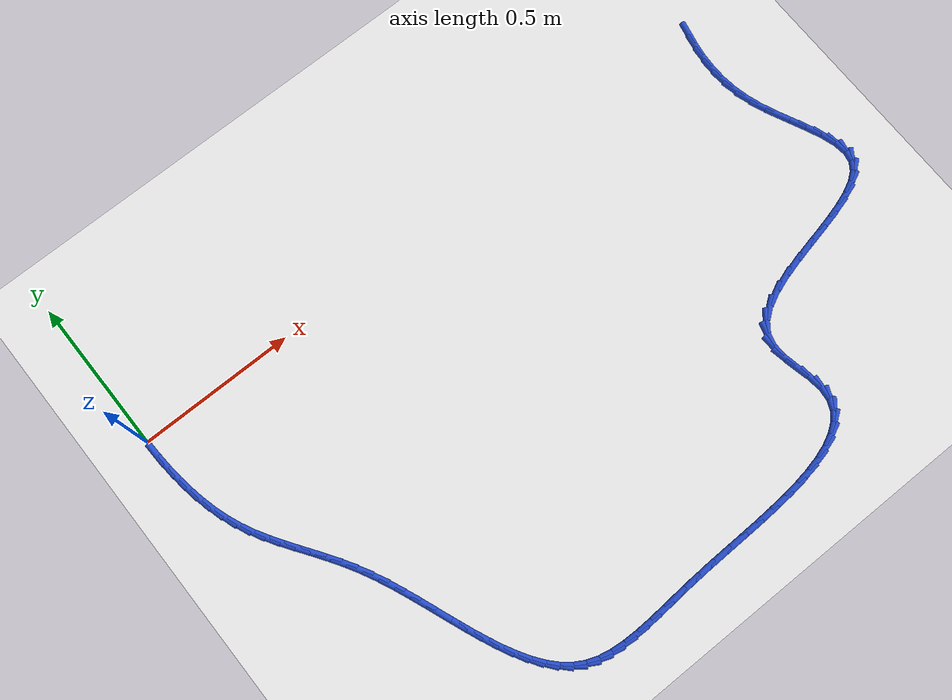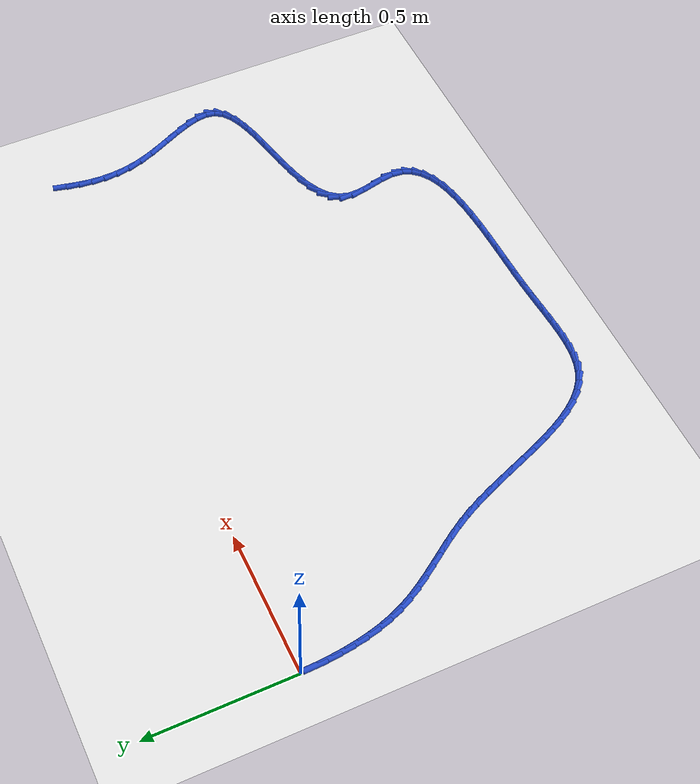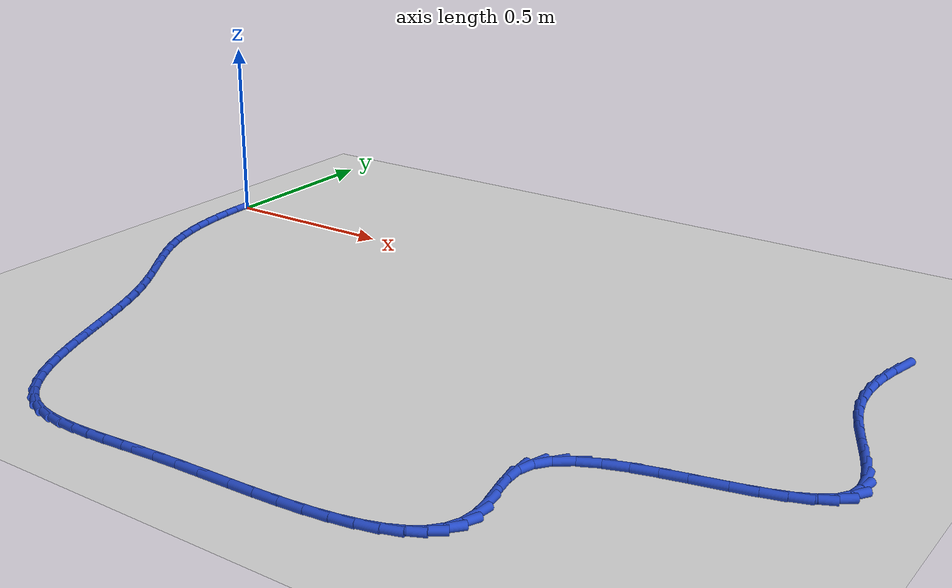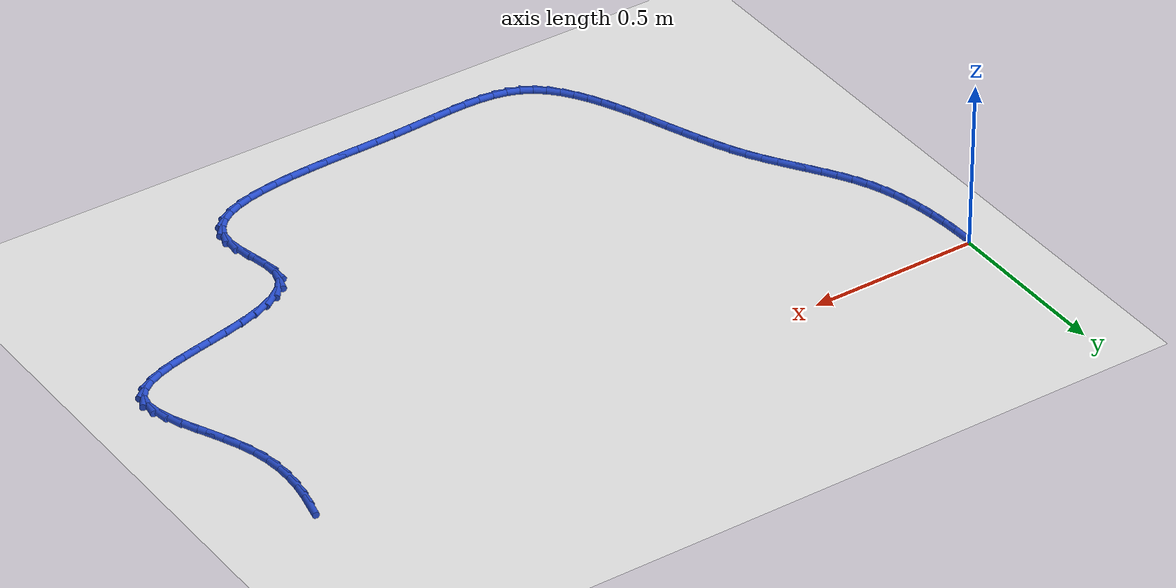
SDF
<sdf version="1.6">
 <world name="default">
  <model name="ground_plane">
   <static>1</static>
   <link name="link">
    <collision name="collision">
     <geometry><plane><normal>0 0 1</normal><size>100 100</size></plane></geometry>
     <surface><friction><ode><mu>100</mu><mu2>50</mu2></ode></friction></surface>
    </collision>
    <visual name="visual">
     <cast_shadows>0</cast_shadows>
     <geometry><plane><normal>0 0 1</normal><size>100 100</size></plane></geometry>
     <material>
      <script><uri>file://media/materials/scripts/gazebo.material</uri><name>Gazebo/WhiteGlow</name></script>
     </material>
    </visual>
   </link>
  </model>
  <model name="line">
   <link name="link_84">
    <pose>2.060452795591752 -0.005595963336700552 0.01 0 1.57 1.3551512401351415</pose>
    <collision name="collision">
     <geometry><cylinder><radius>0.01</radius><length>0.08</length></cylinder></geometry>
    </collision>
    <visual name="visual">
     <material>
      <script><name>Gazebo/Blue</name><uri>file://media/materials/scripts/gazebo.material</uri></script>
     </material>
     <geometry><cylinder><radius>0.01</radius><length>0.08</length></cylinder></geometry>
    </visual>
   </link>
   <link name="link_85">
    <pose>2.0507002668019827 -0.05011765811756408 0.01 0 1.57 1.4232865861265551</pose>
    <collision name="collision">
     <geometry><cylinder><radius>0.01</radius><length>0.08</length></cylinder></geometry>
    </collision>
    <visual name="visual">
     <material>
      <script><name>Gazebo/Blue</name><uri>file://media/materials/scripts/gazebo.material</uri></script>
     </material>
     <geometry><cylinder><radius>0.01</radius><length>0.08</length></cylinder></geometry>
    </visual>
   </link>
   <link name="link_86">
    <pose>2.0440206676386947 -0.09507117305946917 0.01 0 1.57 1.5038928874892956</pose>
    <collision name="collision">
     <geometry><cylinder><radius>0.01</radius><length>0.08</length></cylinder></geometry>
    </collision>
    <visual name="visual">
     <material>
      <script><name>Gazebo/Blue</name><uri>file://media/materials/scripts/gazebo.material</uri></script>
     </material>
     <geometry><cylinder><radius>0.01</radius><length>0.08</length></cylinder></geometry>
    </visual>
   </link>
   <link name="link_87">
    <pose>2.040972780200805 -0.1405596949131822 0.01 0 1.57 -1.546030358591935</pose>
    <collision name="collision">
     <geometry><cylinder><radius>0.01</radius><length>0.08</length></cylinder></geometry>
    </collision>
    <visual name="visual">
     <material>
      <script><name>Gazebo/Blue</name><uri>file://media/materials/scripts/gazebo.material</uri></script>
     </material>
     <geometry><cylinder><radius>0.01</radius><length>0.08</length></cylinder></geometry>
    </visual>
   </link>
   <link name="link_88">
    <pose>2.0421153865872284 -0.18668641042946965 0.01 0 1.57 -1.445740342718742</pose>
    <collision name="collision">
     <geometry><cylinder><radius>0.01</radius><length>0.08</length></cylinder></geometry>
    </collision>
    <visual name="visual">
     <material>
      <script><name>Gazebo/Blue</name><uri>file://media/materials/scripts/gazebo.material</uri></script>
     </material>
     <geometry><cylinder><radius>0.01</radius><length>0.08</length></cylinder></geometry>
    </visual>
   </link>
   <link name="link_89">
    <pose>2.048007268896883 -0.2335545063590989 0.01 0 1.57 -1.3402333599834049</pose>
    <collision name="collision">
     <geometry><cylinder><radius>0.01</radius><length>0.08</length></cylinder></geometry>
    </collision>
    <visual name="visual">
     <material>
      <script><name>Gazebo/Blue</name><uri>file://media/materials/scripts/gazebo.material</uri></script>
     </material>
     <geometry><cylinder><radius>0.01</radius><length>0.08</length></cylinder></geometry>
    </visual>
   </link>
   <link name="link_90">
    <pose>2.059207209228683 -0.2812671694528344 0.01 0 1.57 -1.2361242878296406</pose>
    <collision name="collision">
     <geometry><cylinder><radius>0.01</radius><length>0.08</length></cylinder></geometry>
    </collision>
    <visual name="visual">
     <material>
      <script><name>Gazebo/Blue</name><uri>file://media/materials/scripts/gazebo.material</uri></script>
     </material>
     <geometry><cylinder><radius>0.01</radius><length>0.08</length></cylinder></geometry>
    </visual>
   </link>
   <link name="link_91">
    <pose>2.0761110477318416 -0.3298758560582445 0.01 0 1.57 -1.162174759735885</pose>
    <collision name="collision">
     <geometry><cylinder><radius>0.01</radius><length>0.08</length></cylinder></geometry>
    </collision>
    <visual name="visual">
     <material>
      <script><name>Gazebo/Blue</name><uri>file://media/materials/scripts/gazebo.material</uri></script>
     </material>
     <geometry><cylinder><radius>0.01</radius><length>0.08</length></cylinder></geometry>
    </visual>
   </link>
   <link name="link_92">
    <pose>2.097322132698221 -0.37886294668527154 0.01 0 1.57 -1.127745093713557</pose>
    <collision name="collision">
     <geometry><cylinder><radius>0.01</radius><length>0.08</length></cylinder></geometry>
    </collision>
    <visual name="visual">
     <material>
      <script><name>Gazebo/Blue</name><uri>file://media/materials/scripts/gazebo.material</uri></script>
     </material>
     <geometry><cylinder><radius>0.01</radius><length>0.08</length></cylinder></geometry>
    </visual>
   </link>
   <link name="link_93">
    <pose>2.1203338979892616 -0.4273584489828084 0.01 0 1.57 -1.129024447233397</pose>
    <collision name="collision">
     <geometry><cylinder><radius>0.01</radius><length>0.08</length></cylinder></geometry>
    </collision>
    <visual name="visual">
     <material>
      <script><name>Gazebo/Blue</name><uri>file://media/materials/scripts/gazebo.material</uri></script>
     </material>
     <geometry><cylinder><radius>0.01</radius><length>0.08</length></cylinder></geometry>
    </visual>
   </link>
   <link name="link_94">
    <pose>2.142623261422383 -0.4744871271273454 0.01 0 1.57 -1.1695472942777323</pose>
    <collision name="collision">
     <geometry><cylinder><radius>0.01</radius><length>0.08</length></cylinder></geometry>
    </collision>
    <visual name="visual">
     <material>
      <script><name>Gazebo/Blue</name><uri>file://media/materials/scripts/gazebo.material</uri></script>
     </material>
     <geometry><cylinder><radius>0.01</radius><length>0.08</length></cylinder></geometry>
    </visual>
   </link>
   <link name="link_95">
    <pose>2.161667140815 -0.5193737452953698 0.01 0 1.57 -1.2630680662964158</pose>
    <collision name="collision">
     <geometry><cylinder><radius>0.01</radius><length>0.08</length></cylinder></geometry>
    </collision>
    <visual name="visual">
     <material>
      <script><name>Gazebo/Blue</name><uri>file://media/materials/scripts/gazebo.material</uri></script>
     </material>
     <geometry><cylinder><radius>0.01</radius><length>0.08</length></cylinder></geometry>
    </visual>
   </link>
   <link name="link_96">
    <pose>2.1749424539845306 -0.5611430676633719 0.01 0 1.57 -1.4396297805224285</pose>
    <collision name="collision">
     <geometry><cylinder><radius>0.01</radius><length>0.08</length></cylinder></geometry>
    </collision>
    <visual name="visual">
     <material>
      <script><name>Gazebo/Blue</name><uri>file://media/materials/scripts/gazebo.material</uri></script>
     </material>
     <geometry><cylinder><radius>0.01</radius><length>0.08</length></cylinder></geometry>
    </visual>
   </link>
   <link name="link_97">
    <pose>2.179926118748391 -0.5989198584078407 0.01 0 1.57 1.395429004421171</pose>
    <collision name="collision">
     <geometry><cylinder><radius>0.01</radius><length>0.08</length></cylinder></geometry>
    </collision>
    <visual name="visual">
     <material>
      <script><name>Gazebo/Blue</name><uri>file://media/materials/scripts/gazebo.material</uri></script>
     </material>
     <geometry><cylinder><radius>0.01</radius><length>0.08</length></cylinder></geometry>
    </visual>
   </link>
   <link name="link_98">
    <pose>2.174095052923999 -0.6318288817052654 0.01 0 1.57 0.97766791986823</pose>
    <collision name="collision">
     <geometry><cylinder><radius>0.01</radius><length>0.08</length></cylinder></geometry>
    </collision>
    <visual name="visual">
     <material>
      <script><name>Gazebo/Blue</name><uri>file://media/materials/scripts/gazebo.material</uri></script>
     </material>
     <geometry><cylinder><radius>0.01</radius><length>0.08</length></cylinder></geometry>
    </visual>
   </link>
   <link name="link_99">
    <pose>2.1556006908460525 -0.6592646779352935 0.01 0 1.57 0.645076575240495</pose>
    <collision name="collision">
     <geometry><cylinder><radius>0.01</radius><length>0.08</length></cylinder></geometry>
    </collision>
    <visual name="visual">
     <material>
      <script><name>Gazebo/Blue</name><uri>file://media/materials/scripts/gazebo.material</uri></script>
     </material>
     <geometry><cylinder><radius>0.01</radius><length>0.08</length></cylinder></geometry>
    </visual>
   </link>
   <link name="link_100">
    <pose>2.125613250317199 -0.6818291647934299 0.01 0 1.57 0.44109560747134774</pose>
    <collision name="collision">
     <geometry><cylinder><radius>0.01</radius><length>0.08</length></cylinder></geometry>
    </collision>
    <visual name="visual">
     <material>
      <script><name>Gazebo/Blue</name><uri>file://media/materials/scripts/gazebo.material</uri></script>
     </material>
     <geometry><cylinder><radius>0.01</radius><length>0.08</length></cylinder></geometry>
    </visual>
   </link>
   <link name="link_101">
    <pose>2.0861471316560936 -0.7004618949301544 0.01 0 1.57 0.3216947397125242</pose>
    <collision name="collision">
     <geometry><cylinder><radius>0.01</radius><length>0.08</length></cylinder></geometry>
    </collision>
    <visual name="visual">
     <material>
      <script><name>Gazebo/Blue</name><uri>file://media/materials/scripts/gazebo.material</uri></script>
     </material>
     <geometry><cylinder><radius>0.01</radius><length>0.08</length></cylinder></geometry>
    </visual>
   </link>
   <link name="link_102">
    <pose>2.0392167747730423 -0.7161024368308216 0.01 0 1.57 0.25381508895344573</pose>
    <collision name="collision">
     <geometry><cylinder><radius>0.01</radius><length>0.08</length></cylinder></geometry>
    </collision>
    <visual name="visual">
     <material>
      <script><name>Gazebo/Blue</name><uri>file://media/materials/scripts/gazebo.material</uri></script>
     </material>
     <geometry><cylinder><radius>0.01</radius><length>0.08</length></cylinder></geometry>
    </visual>
   </link>
   <link name="link_103">
    <pose>1.9868366195783518 -0.7296903589807862 0.01 0 1.57 0.2198880306778302</pose>
    <collision name="collision">
     <geometry><cylinder><radius>0.01</radius><length>0.08</length></cylinder></geometry>
    </collision>
    <visual name="visual">
     <material>
      <script><name>Gazebo/Blue</name><uri>file://media/materials/scripts/gazebo.material</uri></script>
     </material>
     <geometry><cylinder><radius>0.01</radius><length>0.08</length></cylinder></geometry>
    </visual>
   </link>
   <link name="link_104">
    <pose>1.9310211059823272 -0.7421652298654037 0.01 0 1.57 0.21170193318725733</pose>
    <collision name="collision">
     <geometry><cylinder><radius>0.01</radius><length>0.08</length></cylinder></geometry>
    </collision>
    <visual name="visual">
     <material>
      <script><name>Gazebo/Blue</name><uri>file://media/materials/scripts/gazebo.material</uri></script>
     </material>
     <geometry><cylinder><radius>0.01</radius><length>0.08</length></cylinder></geometry>
    </visual>
   </link>
   <link name="link_105">
    <pose>1.8737846738952773 -0.7544666179700281 0.01 0 1.57 0.2267323509987197</pose>
    <collision name="collision">
     <geometry><cylinder><radius>0.01</radius><length>0.08</length></cylinder></geometry>
    </collision>
    <visual name="visual">
     <material>
      <script><name>Gazebo/Blue</name><uri>file://media/materials/scripts/gazebo.material</uri></script>
     </material>
     <geometry><cylinder><radius>0.01</radius><length>0.08</length></cylinder></geometry>
    </visual>
   </link>
   <link name="link_106">
    <pose>1.817141763227508 -0.7675340917800151 0.01 0 1.57 0.2668776285264531</pose>
    <collision name="collision">
     <geometry><cylinder><radius>0.01</radius><length>0.08</length></cylinder></geometry>
    </collision>
    <visual name="visual">
     <material>
      <script><name>Gazebo/Blue</name><uri>file://media/materials/scripts/gazebo.material</uri></script>
     </material>
     <geometry><cylinder><radius>0.01</radius><length>0.08</length></cylinder></geometry>
    </visual>
   </link>
   <link name="link_107">
    <pose>1.7631068138893244 -0.7823072197807188 0.01 0 1.57 0.3389079473740387</pose>
    <collision name="collision">
     <geometry><cylinder><radius>0.01</radius><length>0.08</length></cylinder></geometry>
    </collision>
    <visual name="visual">
     <material>
      <script><name>Gazebo/Blue</name><uri>file://media/materials/scripts/gazebo.material</uri></script>
     </material>
     <geometry><cylinder><radius>0.01</radius><length>0.08</length></cylinder></geometry>
    </visual>
   </link>
   <link name="link_108">
    <pose>1.713694265791034 -0.7997255704574946 0.01 0 1.57 0.45642680184014245</pose>
    <collision name="collision">
     <geometry><cylinder><radius>0.01</radius><length>0.08</length></cylinder></geometry>
    </collision>
    <visual name="visual">
     <material>
      <script><name>Gazebo/Blue</name><uri>file://media/materials/scripts/gazebo.material</uri></script>
     </material>
     <geometry><cylinder><radius>0.01</radius><length>0.08</length></cylinder></geometry>
    </visual>
   </link>
   <link name="link_109">
    <pose>1.6709185588429432 -0.8207287122956972 0.01 0 1.57 0.6422655572077517</pose>
    <collision name="collision">
     <geometry><cylinder><radius>0.01</radius><length>0.08</length></cylinder></geometry>
    </collision>
    <visual name="visual">
     <material>
      <script><name>Gazebo/Blue</name><uri>file://media/materials/scripts/gazebo.material</uri></script>
     </material>
     <geometry><cylinder><radius>0.01</radius><length>0.08</length></cylinder></geometry>
    </visual>
   </link>
   <link name="link_110">
    <pose>1.6367941329553577 -0.8462562137806824 0.01 0 1.57 0.9228673232064514</pose>
    <collision name="collision">
     <geometry><cylinder><radius>0.01</radius><length>0.08</length></cylinder></geometry>
    </collision>
    <visual name="visual">
     <material>
      <script><name>Gazebo/Blue</name><uri>file://media/materials/scripts/gazebo.material</uri></script>
     </material>
     <geometry><cylinder><radius>0.01</radius><length>0.08</length></cylinder></geometry>
    </visual>
   </link>
   <link name="link_111">
    <pose>1.6133354280385852 -0.8772476433978034 0.01 0 1.57 1.2900836275622056</pose>
    <collision name="collision">
     <geometry><cylinder><radius>0.01</radius><length>0.08</length></cylinder></geometry>
    </collision>
    <visual name="visual">
     <material>
      <script><name>Gazebo/Blue</name><uri>file://media/materials/scripts/gazebo.material</uri></script>
     </material>
     <geometry><cylinder><radius>0.01</radius><length>0.08</length></cylinder></geometry>
    </visual>
   </link>
   <link name="link_112">
    <pose>1.602553940630419 -0.914641021460806 0.01 0 1.57 -1.5262820441991398</pose>
    <collision name="collision">
     <geometry><cylinder><radius>0.01</radius><length>0.08</length></cylinder></geometry>
    </collision>
    <visual name="visual">
     <material>
      <script><name>Gazebo/Blue</name><uri>file://media/materials/scripts/gazebo.material</uri></script>
     </material>
     <geometry><cylinder><radius>0.01</radius><length>0.08</length></cylinder></geometry>
    </visual>
   </link>
   <link name="link_113">
    <pose>1.6045005948281443 -0.9583431353767322 0.01 0 1.57 -1.3743917330117579</pose>
    <collision name="collision">
     <geometry><cylinder><radius>0.01</radius><length>0.08</length></cylinder></geometry>
    </collision>
    <visual name="visual">
     <material>
      <script><name>Gazebo/Blue</name><uri>file://media/materials/scripts/gazebo.material</uri></script>
     </material>
     <geometry><cylinder><radius>0.01</radius><length>0.08</length></cylinder></geometry>
    </visual>
   </link>
   <link name="link_114">
    <pose>1.6138723691208838 -1.0054446741633174 0.01 0 1.57 -1.3497367332188388</pose>
    <collision name="collision">
     <geometry><cylinder><radius>0.01</radius><length>0.08</length></cylinder></geometry>
    </collision>
    <visual name="visual">
     <material>
      <script><name>Gazebo/Blue</name><uri>file://media/materials/scripts/gazebo.material</uri></script>
     </material>
     <geometry><cylinder><radius>0.01</radius><length>0.08</length></cylinder></geometry>
    </visual>
   </link>
   <link name="link_115">
    <pose>1.624460709721561 -1.052560029884406 0.01 0 1.57 -1.443536659515879</pose>
    <collision name="collision">
     <geometry><cylinder><radius>0.01</radius><length>0.08</length></cylinder></geometry>
    </collision>
    <visual name="visual">
     <material>
      <script><name>Gazebo/Blue</name><uri>file://media/materials/scripts/gazebo.material</uri></script>
     </material>
     <geometry><cylinder><radius>0.01</radius><length>0.08</length></cylinder></geometry>
    </visual>
   </link>
   <link name="link_116">
    <pose>1.6300578004978927 -1.0963040001329503 0.01 0 1.57 1.4630678251634142</pose>
    <collision name="collision">
     <geometry><cylinder><radius>0.01</radius><length>0.08</length></cylinder></geometry>
    </collision>
    <visual name="visual">
     <material>
      <script><name>Gazebo/Blue</name><uri>file://media/materials/scripts/gazebo.material</uri></script>
     </material>
     <geometry><cylinder><radius>0.01</radius><length>0.08</length></cylinder></geometry>
    </visual>
   </link>
   <link name="link_117">
    <pose>1.6259678240111788 -1.1341226107270226 0.01 0 1.57 1.1631432102149255</pose>
    <collision name="collision">
     <geometry><cylinder><radius>0.01</radius><length>0.08</length></cylinder></geometry>
    </collision>
    <visual name="visual">
     <material>
      <script><name>Gazebo/Blue</name><uri>file://media/materials/scripts/gazebo.material</uri></script>
     </material>
     <geometry><cylinder><radius>0.01</radius><length>0.08</length></cylinder></geometry>
    </visual>
   </link>
   <link name="link_118">
    <pose>1.6121845035127043 -1.1660399840140747 0.01 0 1.57 0.865893846145309</pose>
    <collision name="collision">
     <geometry><cylinder><radius>0.01</radius><length>0.08</length></cylinder></geometry>
    </collision>
    <visual name="visual">
     <material>
      <script><name>Gazebo/Blue</name><uri>file://media/materials/scripts/gazebo.material</uri></script>
     </material>
     <geometry><cylinder><radius>0.01</radius><length>0.08</length></cylinder></geometry>
    </visual>
   </link>
   <link name="link_119">
    <pose>1.5896080252557299 -1.1925785745395068 0.01 0 1.57 0.6184732455180386</pose>
    <collision name="collision">
     <geometry><cylinder><radius>0.01</radius><length>0.08</length></cylinder></geometry>
    </collision>
    <visual name="visual">
     <material>
      <script><name>Gazebo/Blue</name><uri>file://media/materials/scripts/gazebo.material</uri></script>
     </material>
     <geometry><cylinder><radius>0.01</radius><length>0.08</length></cylinder></geometry>
    </visual>
   </link>
   <link name="link_120">
    <pose>1.5591385754935152 -1.214260836848717 0.01 0 1.57 0.43368614232045055</pose>
    <collision name="collision">
     <geometry><cylinder><radius>0.01</radius><length>0.08</length></cylinder></geometry>
    </collision>
    <visual name="visual">
     <material>
      <script><name>Gazebo/Blue</name><uri>file://media/materials/scripts/gazebo.material</uri></script>
     </material>
     <geometry><cylinder><radius>0.01</radius><length>0.08</length></cylinder></geometry>
    </visual>
   </link>
   <link name="link_121">
    <pose>1.5216763404793205 -1.2316092254871056 0.01 0 1.57 0.30133802636970064</pose>
    <collision name="collision">
     <geometry><cylinder><radius>0.01</radius><length>0.08</length></cylinder></geometry>
    </collision>
    <visual name="visual">
     <material>
      <script><name>Gazebo/Blue</name><uri>file://media/materials/scripts/gazebo.material</uri></script>
     </material>
     <geometry><cylinder><radius>0.01</radius><length>0.08</length></cylinder></geometry>
    </visual>
   </link>
   <link name="link_122">
    <pose>1.4781215064664064 -1.2451461950000706 0.01 0 1.57 0.20720993999344645</pose>
    <collision name="collision">
     <geometry><cylinder><radius>0.01</radius><length>0.08</length></cylinder></geometry>
    </collision>
    <visual name="visual">
     <material>
      <script><name>Gazebo/Blue</name><uri>file://media/materials/scripts/gazebo.material</uri></script>
     </material>
     <geometry><cylinder><radius>0.01</radius><length>0.08</length></cylinder></geometry>
    </visual>
   </link>
   <link name="link_123">
    <pose>1.4293742597080328 -1.2553941999330118 0.01 0 1.57 0.14013073255590272</pose>
    <collision name="collision">
     <geometry><cylinder><radius>0.01</radius><length>0.08</length></cylinder></geometry>
    </collision>
    <visual name="visual">
     <material>
      <script><name>Gazebo/Blue</name><uri>file://media/materials/scripts/gazebo.material</uri></script>
     </material>
     <geometry><cylinder><radius>0.01</radius><length>0.08</length></cylinder></geometry>
    </visual>
   </link>
   <link name="link_124">
    <pose>1.3763347864574602 -1.2628756948313289 0.01 0 1.57 0.09254542811900324</pose>
    <collision name="collision">
     <geometry><cylinder><radius>0.01</radius><length>0.08</length></cylinder></geometry>
    </collision>
    <visual name="visual">
     <material>
      <script><name>Gazebo/Blue</name><uri>file://media/materials/scripts/gazebo.material</uri></script>
     </material>
     <geometry><cylinder><radius>0.01</radius><length>0.08</length></cylinder></geometry>
    </visual>
   </link>
   <link name="link_125">
    <pose>1.3199032729679485 -1.2681131342404206 0.01 0 1.57 0.05959732214188934</pose>
    <collision name="collision">
     <geometry><cylinder><radius>0.01</radius><length>0.08</length></cylinder></geometry>
    </collision>
    <visual name="visual">
     <material>
      <script><name>Gazebo/Blue</name><uri>file://media/materials/scripts/gazebo.material</uri></script>
     </material>
     <geometry><cylinder><radius>0.01</radius><length>0.08</length></cylinder></geometry>
    </visual>
   </link>
   <link name="link_126">
    <pose>1.2609799054927568 -1.2716289727056862 0.01 0 1.57 0.03826423112674772</pose>
    <collision name="collision">
     <geometry><cylinder><radius>0.01</radius><length>0.08</length></cylinder></geometry>
    </collision>
    <visual name="visual">
     <material>
      <script><name>Gazebo/Blue</name><uri>file://media/materials/scripts/gazebo.material</uri></script>
     </material>
     <geometry><cylinder><radius>0.01</radius><length>0.08</length></cylinder></geometry>
    </visual>
   </link>
   <link name="link_127">
    <pose>1.2004648702851475 -1.2739456647725247 0.01 0 1.57 0.026788126391036483</pose>
    <collision name="collision">
     <geometry><cylinder><radius>0.01</radius><length>0.08</length></cylinder></geometry>
    </collision>
    <visual name="visual">
     <material>
      <script><name>Gazebo/Blue</name><uri>file://media/materials/scripts/gazebo.material</uri></script>
     </material>
     <geometry><cylinder><radius>0.01</radius><length>0.08</length></cylinder></geometry>
    </visual>
   </link>
   <link name="link_128">
    <pose>1.13925835359838 -1.2755856649863357 0.01 0 1.57 0.0243528272961943</pose>
    <collision name="collision">
     <geometry><cylinder><radius>0.01</radius><length>0.08</length></cylinder></geometry>
    </collision>
    <visual name="visual">
     <material>
      <script><name>Gazebo/Blue</name><uri>file://media/materials/scripts/gazebo.material</uri></script>
     </material>
     <geometry><cylinder><radius>0.01</radius><length>0.08</length></cylinder></geometry>
    </visual>
   </link>
   <link name="link_129">
    <pose>1.0782605416857134 -1.2770714278925182 0.01 0 1.57 0.030947096932216683</pose>
    <collision name="collision">
     <geometry><cylinder><radius>0.01</radius><length>0.08</length></cylinder></geometry>
    </collision>
    <visual name="visual">
     <material>
      <script><name>Gazebo/Blue</name><uri>file://media/materials/scripts/gazebo.material</uri></script>
     </material>
     <geometry><cylinder><radius>0.01</radius><length>0.08</length></cylinder></geometry>
    </visual>
   </link>
   <link name="link_130">
    <pose>1.0183716208004092 -1.2789254080364714 0.01 0 1.57 0.04707712241939561</pose>
    <collision name="collision">
     <geometry><cylinder><radius>0.01</radius><length>0.08</length></cylinder></geometry>
    </collision>
    <visual name="visual">
     <material>
      <script><name>Gazebo/Blue</name><uri>file://media/materials/scripts/gazebo.material</uri></script>
     </material>
     <geometry><cylinder><radius>0.01</radius><length>0.08</length></cylinder></geometry>
    </visual>
   </link>
   <link name="link_131">
    <pose>0.9604809072165906 -1.281652751374408 0.01 0 1.57 0.06373323482806974</pose>
    <collision name="collision">
     <geometry><cylinder><radius>0.01</radius><length>0.08</length></cylinder></geometry>
    </collision>
    <visual name="visual">
     <material>
      <script><name>Gazebo/Blue</name><uri>file://media/materials/scripts/gazebo.material</uri></script>
     </material>
     <geometry><cylinder><radius>0.01</radius><length>0.08</length></cylinder></geometry>
    </visual>
   </link>
   <link name="link_132">
    <pose>0.9051181076253246 -1.2851859868902773 0.01 0 1.57 0.0677985713273823</pose>
    <collision name="collision">
     <geometry><cylinder><radius>0.01</radius><length>0.08</length></cylinder></geometry>
    </collision>
    <visual name="visual">
     <material>
      <script><name>Gazebo/Blue</name><uri>file://media/materials/scripts/gazebo.material</uri></script>
     </material>
     <geometry><cylinder><radius>0.01</radius><length>0.08</length></cylinder></geometry>
    </visual>
   </link>
   <link name="link_133">
    <pose>0.8523792564322873 -1.288767094364921 0.01 0 1.57 0.056485373210907186</pose>
    <collision name="collision">
     <geometry><cylinder><radius>0.01</radius><length>0.08</length></cylinder></geometry>
    </collision>
    <visual name="visual">
     <material>
      <script><name>Gazebo/Blue</name><uri>file://media/materials/scripts/gazebo.material</uri></script>
     </material>
     <geometry><cylinder><radius>0.01</radius><length>0.08</length></cylinder></geometry>
    </visual>
   </link>
   <link name="link_134">
    <pose>0.8023345424887203 -1.2915968989386362 0.01 0 1.57 0.027051697081657756</pose>
    <collision name="collision">
     <geometry><cylinder><radius>0.01</radius><length>0.08</length></cylinder></geometry>
    </collision>
    <visual name="visual">
     <material>
      <script><name>Gazebo/Blue</name><uri>file://media/materials/scripts/gazebo.material</uri></script>
     </material>
     <geometry><cylinder><radius>0.01</radius><length>0.08</length></cylinder></geometry>
    </visual>
   </link>
   <link name="link_135">
    <pose>0.7550541546458656 -1.2928762257517197 0.01 0 1.57 -0.024076903163464603</pose>
    <collision name="collision">
     <geometry><cylinder><radius>0.01</radius><length>0.08</length></cylinder></geometry>
    </collision>
    <visual name="visual">
     <material>
      <script><name>Gazebo/Blue</name><uri>file://media/materials/scripts/gazebo.material</uri></script>
     </material>
     <geometry><cylinder><radius>0.01</radius><length>0.08</length></cylinder></geometry>
    </visual>
   </link>
   <link name="link_136">
    <pose>0.7106082817549642 -1.2918058999444684 0.01 0 1.57 -0.10121849867977364</pose>
    <collision name="collision">
     <geometry><cylinder><radius>0.01</radius><length>0.08</length></cylinder></geometry>
    </collision>
    <visual name="visual">
     <material>
      <script><name>Gazebo/Blue</name><uri>file://media/materials/scripts/gazebo.material</uri></script>
     </material>
     <geometry><cylinder><radius>0.01</radius><length>0.08</length></cylinder></geometry>
    </visual>
   </link>
   <link name="link_137">
    <pose>0.6690671126672597 -1.2875867466571798 0.01 0 1.57 -0.20868621543428773</pose>
    <collision name="collision">
     <geometry><cylinder><radius>0.01</radius><length>0.08</length></cylinder></geometry>
    </collision>
    <visual name="visual">
     <material>
      <script><name>Gazebo/Blue</name><uri>file://media/materials/scripts/gazebo.material</uri></script>
     </material>
     <geometry><cylinder><radius>0.01</radius><length>0.08</length></cylinder></geometry>
    </visual>
   </link>
   <link name="link_138">
    <pose>0.6305008362339932 -1.2794195910301511 0.01 0 1.57 -0.34870970339636065</pose>
    <collision name="collision">
     <geometry><cylinder><radius>0.01</radius><length>0.08</length></cylinder></geometry>
    </collision>
    <visual name="visual">
     <material>
      <script><name>Gazebo/Blue</name><uri>file://media/materials/scripts/gazebo.material</uri></script>
     </material>
     <geometry><cylinder><radius>0.01</radius><length>0.08</length></cylinder></geometry>
    </visual>
   </link>
   <link name="link_139">
    <pose>0.5949796413064067 -1.2665052582036789 0.01 0 1.57 -0.5160611859689367</pose>
    <collision name="collision">
     <geometry><cylinder><radius>0.01</radius><length>0.08</length></cylinder></geometry>
    </collision>
    <visual name="visual">
     <material>
      <script><name>Gazebo/Blue</name><uri>file://media/materials/scripts/gazebo.material</uri></script>
     </material>
     <geometry><cylinder><radius>0.01</radius><length>0.08</length></cylinder></geometry>
    </visual>
   </link>
   <link name="link_140">
    <pose>0.5625542709580471 -1.248108934845644 0.01 0 1.57 -0.6794800424443905</pose>
    <collision name="collision">
     <geometry><cylinder><radius>0.01</radius><length>0.08</length></cylinder></geometry>
    </collision>
    <visual name="visual">
     <material>
      <script><name>Gazebo/Blue</name><uri>file://media/materials/scripts/gazebo.material</uri></script>
     </material>
     <geometry><cylinder><radius>0.01</radius><length>0.08</length></cylinder></geometry>
    </visual>
   </link>
   <link name="link_141">
    <pose>0.5330419196636493 -1.224268805486015 0.01 0 1.57 -0.8176936304282945</pose>
    <collision name="collision">
     <geometry><cylinder><radius>0.01</radius><length>0.08</length></cylinder></geometry>
    </collision>
    <visual name="visual">
     <material>
      <script><name>Gazebo/Blue</name><uri>file://media/materials/scripts/gazebo.material</uri></script>
     </material>
     <geometry><cylinder><radius>0.01</radius><length>0.08</length></cylinder></geometry>
    </visual>
   </link>
   <link name="link_142">
    <pose>0.5061054701503325 -1.1955337948245046 0.01 0 1.57 -0.9293014872104791</pose>
    <collision name="collision">
     <geometry><cylinder><radius>0.01</radius><length>0.08</length></cylinder></geometry>
    </collision>
    <visual name="visual">
     <material>
      <script><name>Gazebo/Blue</name><uri>file://media/materials/scripts/gazebo.material</uri></script>
     </material>
     <geometry><cylinder><radius>0.01</radius><length>0.08</length></cylinder></geometry>
    </visual>
   </link>
   <link name="link_143">
    <pose>0.4814050649156921 -1.16246189715737 0.01 0 1.57 -1.0166492377955474</pose>
    <collision name="collision">
     <geometry><cylinder><radius>0.01</radius><length>0.08</length></cylinder></geometry>
    </collision>
    <visual name="visual">
     <material>
      <script><name>Gazebo/Blue</name><uri>file://media/materials/scripts/gazebo.material</uri></script>
     </material>
     <geometry><cylinder><radius>0.01</radius><length>0.08</length></cylinder></geometry>
    </visual>
   </link>
   <link name="link_144">
    <pose>0.45860084645732296 -1.1256111067808676 0.01 0 1.57 -1.0832450035891248</pose>
    <collision name="collision">
     <geometry><cylinder><radius>0.01</radius><length>0.08</length></cylinder></geometry>
    </collision>
    <visual name="visual">
     <material>
      <script><name>Gazebo/Blue</name><uri>file://media/materials/scripts/gazebo.material</uri></script>
     </material>
     <geometry><cylinder><radius>0.01</radius><length>0.08</length></cylinder></geometry>
    </visual>
   </link>
   <link name="link_145">
    <pose>0.43735295727281936 -1.0855394179912525 0.01 0 1.57 -1.1324678823783867</pose>
    <collision name="collision">
     <geometry><cylinder><radius>0.01</radius><length>0.08</length></cylinder></geometry>
    </collision>
    <visual name="visual">
     <material>
      <script><name>Gazebo/Blue</name><uri>file://media/materials/scripts/gazebo.material</uri></script>
     </material>
     <geometry><cylinder><radius>0.01</radius><length>0.08</length></cylinder></geometry>
    </visual>
   </link>
   <link name="link_146">
    <pose>0.41732153985977666 -1.0428048250847817 0.01 0 1.57 -1.167075663704375</pose>
    <collision name="collision">
     <geometry><cylinder><radius>0.01</radius><length>0.08</length></cylinder></geometry>
    </collision>
    <visual name="visual">
     <material>
      <script><name>Gazebo/Blue</name><uri>file://media/materials/scripts/gazebo.material</uri></script>
     </material>
     <geometry><cylinder><radius>0.01</radius><length>0.08</length></cylinder></geometry>
    </visual>
   </link>
   <link name="link_147">
    <pose>0.39816673671578884 -0.9979653223577096 0.01 0 1.57 -1.1891107789795978</pose>
    <collision name="collision">
     <geometry><cylinder><radius>0.01</radius><length>0.08</length></cylinder></geometry>
    </collision>
    <visual name="visual">
     <material>
      <script><name>Gazebo/Blue</name><uri>file://media/materials/scripts/gazebo.material</uri></script>
     </material>
     <geometry><cylinder><radius>0.01</radius><length>0.08</length></cylinder></geometry>
    </visual>
   </link>
   <link name="link_148">
    <pose>0.3795486903384517 -0.9515789041062944 0.01 0 1.57 -1.1999526371711404</pose>
    <collision name="collision">
     <geometry><cylinder><radius>0.01</radius><length>0.08</length></cylinder></geometry>
    </collision>
    <visual name="visual">
     <material>
      <script><name>Gazebo/Blue</name><uri>file://media/materials/scripts/gazebo.material</uri></script>
     </material>
     <geometry><cylinder><radius>0.01</radius><length>0.08</length></cylinder></geometry>
    </visual>
   </link>
   <link name="link_149">
    <pose>0.3611275432253597 -0.9042035646267915 0.01 0 1.57 -1.2003997250554628</pose>
    <collision name="collision">
     <geometry><cylinder><radius>0.01</radius><length>0.08</length></cylinder></geometry>
    </collision>
    <visual name="visual">
     <material>
      <script><name>Gazebo/Blue</name><uri>file://media/materials/scripts/gazebo.material</uri></script>
     </material>
     <geometry><cylinder><radius>0.01</radius><length>0.08</length></cylinder></geometry>
    </visual>
   </link>
   <link name="link_150">
    <pose>0.34256343787410776 -0.8563972982154572 0.01 0 1.57 -1.1907376790733057</pose>
    <collision name="collision">
     <geometry><cylinder><radius>0.01</radius><length>0.08</length></cylinder></geometry>
    </collision>
    <visual name="visual">
     <material>
      <script><name>Gazebo/Blue</name><uri>file://media/materials/scripts/gazebo.material</uri></script>
     </material>
     <geometry><cylinder><radius>0.01</radius><length>0.08</length></cylinder></geometry>
    </visual>
   </link>
   <link name="link_151">
    <pose>0.32351651678229054 -0.808718099168547 0.01 0 1.57 -1.1707820343616613</pose>
    <collision name="collision">
     <geometry><cylinder><radius>0.01</radius><length>0.08</length></cylinder></geometry>
    </collision>
    <visual name="visual">
     <material>
      <script><name>Gazebo/Blue</name><uri>file://media/materials/scripts/gazebo.material</uri></script>
     </material>
     <geometry><cylinder><radius>0.01</radius><length>0.08</length></cylinder></geometry>
    </visual>
   </link>
   <link name="link_152">
    <pose>0.30364692244750296 -0.7617239617823172 0.01 0 1.57 -1.1398988521079194</pose>
    <collision name="collision">
     <geometry><cylinder><radius>0.01</radius><length>0.08</length></cylinder></geometry>
    </collision>
    <visual name="visual">
     <material>
      <script><name>Gazebo/Blue</name><uri>file://media/materials/scripts/gazebo.material</uri></script>
     </material>
     <geometry><cylinder><radius>0.01</radius><length>0.08</length></cylinder></geometry>
    </visual>
   </link>
   <link name="link_153">
    <pose>0.28261479736733947 -0.7159728803530234 0.01 0 1.57 -1.0970166749669972</pose>
    <collision name="collision">
     <geometry><cylinder><radius>0.01</radius><length>0.08</length></cylinder></geometry>
    </collision>
    <visual name="visual">
     <material>
      <script><name>Gazebo/Blue</name><uri>file://media/materials/scripts/gazebo.material</uri></script>
     </material>
     <geometry><cylinder><radius>0.01</radius><length>0.08</length></cylinder></geometry>
    </visual>
   </link>
   <link name="link_154">
    <pose>0.2600802934176841 -0.6720228387117912 0.01 0 1.57 -1.0459009855094243</pose>
    <collision name="collision">
     <geometry><cylinder><radius>0.01</radius><length>0.08</length></cylinder></geometry>
    </collision>
    <visual name="visual">
     <material>
      <script><name>Gazebo/Blue</name><uri>file://media/materials/scripts/gazebo.material</uri></script>
     </material>
     <geometry><cylinder><radius>0.01</radius><length>0.08</length></cylinder></geometry>
    </visual>
   </link>
   <link name="link_155">
    <pose>0.23588105779602744 -0.6302337555609066 0.01 0 1.57 -1.0048311380057138</pose>
    <collision name="collision">
     <geometry><cylinder><radius>0.01</radius><length>0.08</length></cylinder></geometry>
    </collision>
    <visual name="visual">
     <material>
      <script><name>Gazebo/Blue</name><uri>file://media/materials/scripts/gazebo.material</uri></script>
     </material>
     <geometry><cylinder><radius>0.01</radius><length>0.08</length></cylinder></geometry>
    </visual>
   </link>
   <link name="link_156">
    <pose>0.21048647974727777 -0.5902605954163648 0.01 0 1.57 -0.9790897367561125</pose>
    <collision name="collision">
     <geometry><cylinder><radius>0.01</radius><length>0.08</length></cylinder></geometry>
    </collision>
    <visual name="visual">
     <material>
      <script><name>Gazebo/Blue</name><uri>file://media/materials/scripts/gazebo.material</uri></script>
     </material>
     <geometry><cylinder><radius>0.01</radius><length>0.08</length></cylinder></geometry>
    </visual>
   </link>
   <link name="link_157">
    <pose>0.18450643772531847 -0.5516015523901643 0.01 0 1.57 -0.9696581839564017</pose>
    <collision name="collision">
     <geometry><cylinder><radius>0.01</radius><length>0.08</length></cylinder></geometry>
    </collision>
    <visual name="visual">
     <material>
      <script><name>Gazebo/Blue</name><uri>file://media/materials/scripts/gazebo.material</uri></script>
     </material>
     <geometry><cylinder><radius>0.01</radius><length>0.08</length></cylinder></geometry>
    </visual>
   </link>
   <link name="link_158">
    <pose>0.15855081018403247 -0.5137548205943033 0.01 0 1.57 -0.9773325613174557</pose>
    <collision name="collision">
     <geometry><cylinder><radius>0.01</radius><length>0.08</length></cylinder></geometry>
    </collision>
    <visual name="visual">
     <material>
      <script><name>Gazebo/Blue</name><uri>file://media/materials/scripts/gazebo.material</uri></script>
     </material>
     <geometry><cylinder><radius>0.01</radius><length>0.08</length></cylinder></geometry>
    </visual>
   </link>
   <link name="link_159">
    <pose>0.13322947557730425 -0.4762185941407817 0.01 0 1.57 -1.002771393168035</pose>
    <collision name="collision">
     <geometry><cylinder><radius>0.01</radius><length>0.08</length></cylinder></geometry>
    </collision>
    <visual name="visual">
     <material>
      <script><name>Gazebo/Blue</name><uri>file://media/materials/scripts/gazebo.material</uri></script>
     </material>
     <geometry><cylinder><radius>0.01</radius><length>0.08</length></cylinder></geometry>
    </visual>
   </link>
   <link name="link_160">
    <pose>0.10915231235901669 -0.4384910671415972 0.01 0 1.57 -1.0463985387017862</pose>
    <collision name="collision">
     <geometry><cylinder><radius>0.01</radius><length>0.08</length></cylinder></geometry>
    </collision>
    <visual name="visual">
     <material>
      <script><name>Gazebo/Blue</name><uri>file://media/materials/scripts/gazebo.material</uri></script>
     </material>
     <geometry><cylinder><radius>0.01</radius><length>0.08</length></cylinder></geometry>
    </visual>
   </link>
   <link name="link_161">
    <pose>0.08692919898305322 -0.40007043370874834 0.01 0 1.57 -1.1081303563138585</pose>
    <collision name="collision">
     <geometry><cylinder><radius>0.01</radius><length>0.08</length></cylinder></geometry>
    </collision>
    <visual name="visual">
     <material>
      <script><name>Gazebo/Blue</name><uri>file://media/materials/scripts/gazebo.material</uri></script>
     </material>
     <geometry><cylinder><radius>0.01</radius><length>0.08</length></cylinder></geometry>
    </visual>
   </link>
   <link name="link_162">
    <pose>0.06717001288400683 -0.36045488881154375 0.01 0 1.57 -1.182874447284004</pose>
    <collision name="collision">
     <geometry><cylinder><radius>0.01</radius><length>0.08</length></cylinder></geometry>
    </collision>
    <visual name="visual">
     <material>
      <script><name>Gazebo/Blue</name><uri>file://media/materials/scripts/gazebo.material</uri></script>
     </material>
     <geometry><cylinder><radius>0.01</radius><length>0.08</length></cylinder></geometry>
    </visual>
   </link>
   <link name="link_163">
    <pose>0.05033879858229543 -0.31926528526200576 0.01 0 1.57 -1.254057370971016</pose>
    <collision name="collision">
     <geometry><cylinder><radius>0.01</radius><length>0.08</length></cylinder></geometry>
    </collision>
    <visual name="visual">
     <material>
      <script><name>Gazebo/Blue</name><uri>file://media/materials/scripts/gazebo.material</uri></script>
     </material>
     <geometry><cylinder><radius>0.01</radius><length>0.08</length></cylinder></geometry>
    </visual>
   </link>
   <link name="link_164">
    <pose>0.03634938764874991 -0.27658525160295216 0.01 0 1.57 -1.3179345045921307</pose>
    <collision name="collision">
     <geometry><cylinder><radius>0.01</radius><length>0.08</length></cylinder></geometry>
    </collision>
    <visual name="visual">
     <material>
      <script><name>Gazebo/Blue</name><uri>file://media/materials/scripts/gazebo.material</uri></script>
     </material>
     <geometry><cylinder><radius>0.01</radius><length>0.08</length></cylinder></geometry>
    </visual>
   </link>
   <link name="link_165">
    <pose>0.024985873069460027 -0.23260753752458221 0.01 0 1.57 -1.3747448928674255</pose>
    <collision name="collision">
     <geometry><cylinder><radius>0.01</radius><length>0.08</length></cylinder></geometry>
    </collision>
    <visual name="visual">
     <material>
      <script><name>Gazebo/Blue</name><uri>file://media/materials/scripts/gazebo.material</uri></script>
     </material>
     <geometry><cylinder><radius>0.01</radius><length>0.08</length></cylinder></geometry>
    </visual>
   </link>
   <link name="link_166">
    <pose>0.016032347830515922 -0.18752489271709635 0.01 0 1.57 -1.4248798804044254</pose>
    <collision name="collision">
     <geometry><cylinder><radius>0.01</radius><length>0.08</length></cylinder></geometry>
    </collision>
    <visual name="visual">
     <material>
      <script><name>Gazebo/Blue</name><uri>file://media/materials/scripts/gazebo.material</uri></script>
     </material>
     <geometry><cylinder><radius>0.01</radius><length>0.08</length></cylinder></geometry>
    </visual>
   </link>
   <link name="link_167">
    <pose>0.009272904918007729 -0.141530066870695 0.01 0 1.57 -1.4688001444586103</pose>
    <collision name="collision">
     <geometry><cylinder><radius>0.01</radius><length>0.08</length></cylinder></geometry>
    </collision>
    <visual name="visual">
     <material>
      <script><name>Gazebo/Blue</name><uri>file://media/materials/scripts/gazebo.material</uri></script>
     </material>
     <geometry><cylinder><radius>0.01</radius><length>0.08</length></cylinder></geometry>
    </visual>
   </link>
   <link name="link_168">
    <pose>0.004491637318025516 -0.09481580967557746 0.01 0 1.57 -1.5069766923623156</pose>
    <collision name="collision">
     <geometry><cylinder><radius>0.01</radius><length>0.08</length></cylinder></geometry>
    </collision>
    <visual name="visual">
     <material>
      <script><name>Gazebo/Blue</name><uri>file://media/materials/scripts/gazebo.material</uri></script>
     </material>
     <geometry><cylinder><radius>0.01</radius><length>0.08</length></cylinder></geometry>
    </visual>
   </link>
   <link name="link_169">
    <pose>0.0014726380166595913 -0.04757487082194587 0.01 0 1.57 -1.5398520925416188</pose>
    <collision name="collision">
     <geometry><cylinder><radius>0.01</radius><length>0.08</length></cylinder></geometry>
    </collision>
    <visual name="visual">
     <material>
      <script><name>Gazebo/Blue</name><uri>file://media/materials/scripts/gazebo.material</uri></script>
     </material>
     <geometry><cylinder><radius>0.01</radius><length>0.08</length></cylinder></geometry>
    </visual>
   </link>
  </model>
 </world>
</sdf>
